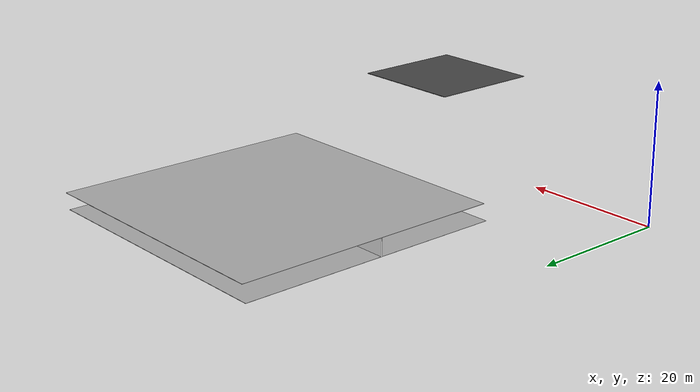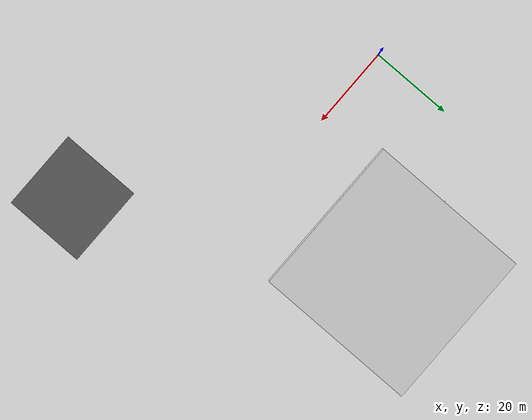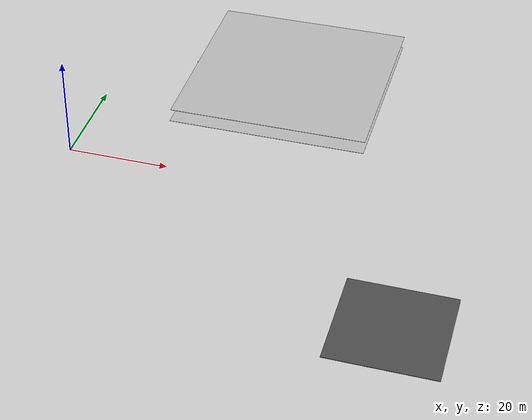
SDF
<sdf version="1.6">
 <world name="default">
  <model name="mainoffice">
   <pose>42.7555 15.4488 0 0 -0 0</pose>
   <link name="Wall_75">
    <pose>-16.7991 17.975 0 0 -0 0</pose>
    <visual name="Wall_75_Visual_0">
     <pose>-2.1273 0 1.25 0 -0 0</pose>
     <geometry><box><size>16.4954 0.15 2.5</size></box></geometry>
     <material>
      <script>
       <uri>model://office_env/materials/scripts</uri>
       <uri>model://office_env/materials/textures</uri>
       <name>wall</name>
      </script>
      <ambient>1 1 1 1</ambient>
     </material>
    </visual>
    <collision name="Wall_75_Collision_0">
     <geometry><box><size>16.4954 0.15 2.5</size></box></geometry>
     <pose>-2.1273 0 1.25 0 -0 0</pose>
    </collision>
    <visual name="Wall_75_Visual_1">
     <pose>8.9977 0 1.25 0 -0 0</pose>
     <geometry><box><size>2.7546 0.15 2.5</size></box></geometry>
     <material>
      <script>
       <uri>model://office_env/materials/scripts</uri>
       <uri>model://office_env/materials/textures</uri>
       <name>wall</name>
      </script>
      <ambient>1 1 1 1</ambient>
     </material>
    </visual>
    <collision name="Wall_75_Collision_1">
     <geometry><box><size>2.7546 0.15 2.5</size></box></geometry>
     <pose>8.9977 0 1.25 0 -0 0</pose>
    </collision>
    <visual name="Wall_75_Visual_2">
     <pose>6.8704 0 2.25 0 -0 0</pose>
     <geometry><box><size>1.5 0.15 0.5</size></box></geometry>
     <material>
      <script>
       <uri>model://office_env/materials/scripts</uri>
       <uri>model://office_env/materials/textures</uri>
       <name>wall</name>
      </script>
      <ambient>1 1 1 1</ambient>
     </material>
    </visual>
    <collision name="Wall_75_Collision_2">
     <geometry><box><size>1.5 0.15 0.5</size></box></geometry>
     <pose>6.8704 0 2.25 0 -0 0</pose>
    </collision>
   </link>
   <static>1</static>
  </model>
  <model name="asphalt_plane">
   <static>1</static>
   <link name="link">
    <collision name="collision"><geometry><box><size>20 20 0.1</size></box></geometry></collision>
    <visual name="visual">
     <cast_shadows>0</cast_shadows>
     <geometry><box><size>20 20 0.1</size></box></geometry>
     <material>
      <script>
       <uri>model://asphalt_plane/materials/scripts</uri>
       <uri>model://asphalt_plane/materials/textures</uri>
       <name>vrc/asphalt</name>
      </script>
     </material>
    </visual>
   </link>
   <pose>70.7475 -31.5972 0 0 -0 0</pose>
  </model>
  <model name="table_3_clone_clone_clone_4">
   <static>0</static>
   <link name="link">
    <collision name="surface">
     <pose>0 0 1 0 -0 0</pose>
     <geometry><box><size>1.5 0.8 0.03</size></box></geometry>
     <surface><friction><ode><mu>0.6</mu><mu2>0.6</mu2></ode></friction></surface>
    </collision>
    <visual name="visual1">
     <pose>0 0 1 0 -0 0</pose>
     <geometry><box><size>1.4 0.8 0.04</size></box></geometry>
     <material>
      <script><uri>file://media/materials/scripts/gazebo.material</uri><name>Gazebo/Wood</name></script>
     </material>
    </visual>
    <collision name="front_left_leg">
     <pose>0.68 0.38 0.5 0 -0 0</pose>
     <geometry><cylinder><radius>0.02</radius><length>1</length></cylinder></geometry>
    </collision>
    <visual name="front_left_leg">
     <pose>0.68 0.38 0.5 0 -0 0</pose>
     <geometry><cylinder><radius>0.02</radius><length>1</length></cylinder></geometry>
     <material>
      <script>
       <uri>model://office_env/materials/scripts</uri>
       <uri>model://office_env/materials/textures</uri>
       <name>wall</name>
      </script>
     </material>
    </visual>
    <collision name="front_right_leg">
     <pose>0.68 -0.38 0.5 0 -0 0</pose>
     <geometry><cylinder><radius>0.02</radius><length>1</length></cylinder></geometry>
    </collision>
    <visual name="front_right_leg">
     <pose>0.68 -0.38 0.5 0 -0 0</pose>
     <geometry><cylinder><radius>0.02</radius><length>1</length></cylinder></geometry>
     <material>
      <script>
       <uri>model://office_env/materials/scripts</uri>
       <uri>model://office_env/materials/textures</uri>
       <name>wall</name>
      </script>
     </material>
    </visual>
    <collision name="back_right_leg">
     <pose>-0.68 -0.38 0.5 0 -0 0</pose>
     <geometry><cylinder><radius>0.02</radius><length>1</length></cylinder></geometry>
    </collision>
    <visual name="back_right_leg">
     <pose>-0.68 -0.38 0.5 0 -0 0</pose>
     <geometry><cylinder><radius>0.02</radius><length>1</length></cylinder></geometry>
     <material>
      <script>
       <uri>model://office_env/materials/scripts</uri>
       <uri>model://office_env/materials/textures</uri>
       <name>wall</name>
      </script>
     </material>
    </visual>
    <collision name="back_left_leg">
     <pose>-0.68 0.38 0.5 0 -0 0</pose>
     <geometry><cylinder><radius>0.02</radius><length>1</length></cylinder></geometry>
    </collision>
    <visual name="back_left_leg">
     <pose>-0.68 0.38 0.5 0 -0 0</pose>
     <geometry><cylinder><radius>0.02</radius><length>1</length></cylinder></geometry>
     <material>
      <script>
       <uri>model://office_env/materials/scripts</uri>
       <uri>model://office_env/materials/textures</uri>
       <name>wall</name>
      </script>
     </material>
    </visual>
    <inertial>
     <inertia><ixx>1</ixx><ixy>0</ixy><ixz>0</ixz><iyy>1</iyy><iyz>0</iyz><izz>1</izz></inertia>
     <mass>1</mass>
    </inertial>
   </link>
   <pose>25.9412 30.1477 0.034999 0 0 -1.58064</pose>
  </model>
  <model name="Floor_28">
   <link name="main">
    <pose>0 0 0.01 0 -0 0</pose>
    <collision name="main_Collision"><geometry><box><size>40 40 0.05</size></box></geometry></collision>
    <visual name="main_Visual">
     <geometry><box><size>40 40 0.05</size></box></geometry>
     <material>
      <script>
       <uri>model://Floor_large/materials/scripts</uri>
       <uri>model://Floor_large/materials/textures</uri>
       <name>floor</name>
      </script>
     </material>
    </visual>
   </link>
   <static>1</static>
   <pose>35.6092 34.6684 0 0 -0 0</pose>
  </model>
  <model name="Floor_5_clone_1">
   <link name="main">
    <pose>0 0 0.01 0 -0 0</pose>
    <collision name="main_Collision"><geometry><box><size>40 40 0.05</size></box></geometry></collision>
    <visual name="main_Visual">
     <geometry><box><size>40 40 0.05</size></box></geometry>
     <material>
      <script>
       <uri>model://Floor_large/materials/scripts</uri>
       <uri>model://Floor_large/materials/textures</uri>
       <name>floor</name>
      </script>
     </material>
    </visual>
   </link>
   <static>1</static>
   <pose>35.7589 35.0015 2.5 0 -0 0</pose>
  </model>
 </world>
</sdf>
